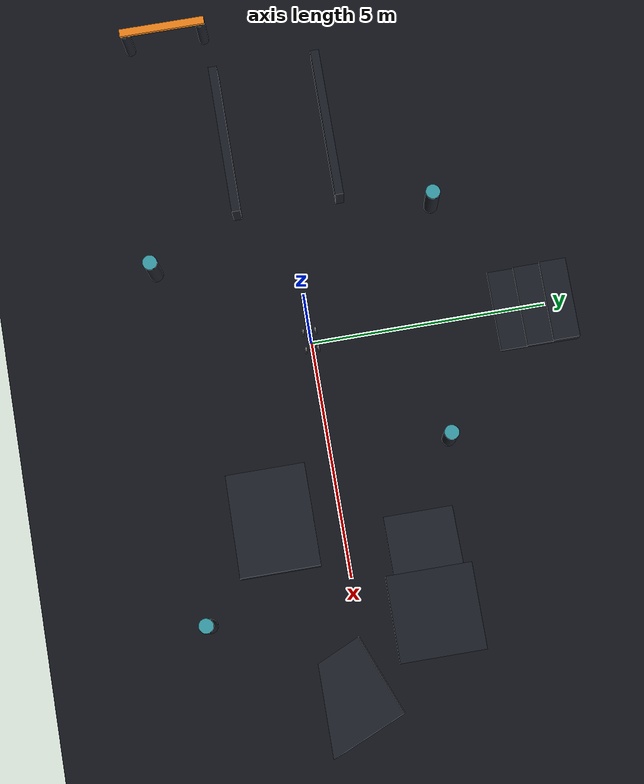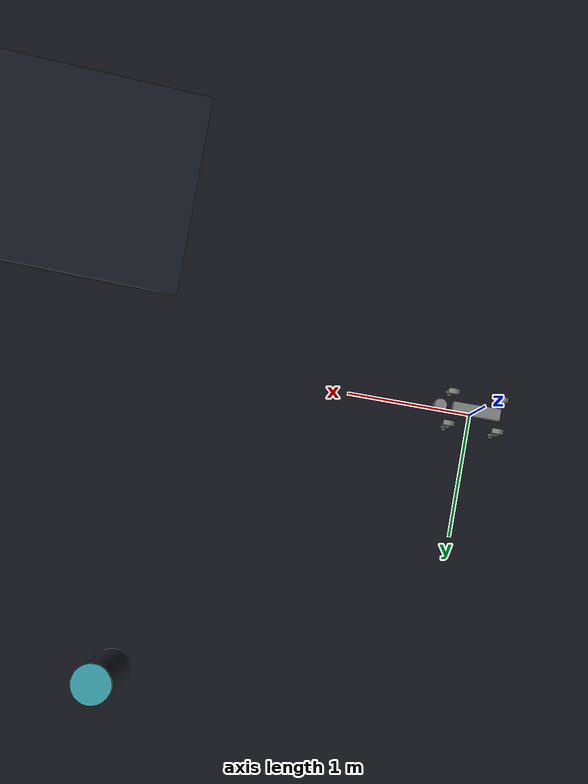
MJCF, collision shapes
<mujoco model="welt_testfeld">
  <include file="go2.xml"/>
  <worldbody>
    <geom name="w_floor" type="plane" size="0 0 0.05" rgba="0.07 0.08 0.11 1" condim="3" friction="1.0 0.005 0.0001"/>
    <body name="w_ramp_a" pos="3.400 -1.400 0.116" euler="0 -0.21 0">
      <geom name="w_ramp_a_g" type="box" size="1.300 0.840 0.063" rgba="0.10 0.115 0.145 1" condim="3" friction="0.9"/>
    </body>
    <body name="w_plat" pos="6.000 1.600 0.147">
      <geom name="w_plat_g" type="box" size="0.900 0.900 0.147" rgba="0.10 0.115 0.145 1" condim="3"/>
    </body>
    <body name="w_plat_ramp" pos="4.550 1.600 0.074" euler="0 -0.19 0">
      <geom name="w_plat_ramp_g" type="box" size="0.950 0.730 0.037" rgba="0.10 0.115 0.145 1" condim="3" friction="0.9"/>
    </body>
    <body name="w_step0" pos="0.000 4.200 0.053">
      <geom name="w_step0_g" type="box" size="0.850 0.280 0.053" rgba="0.10 0.115 0.145 1" condim="3"/>
    </body>
    <body name="w_step1" pos="0.000 4.750 0.105">
      <geom name="w_step1_g" type="box" size="0.850 0.280 0.105" rgba="0.10 0.115 0.145 1" condim="3"/>
    </body>
    <body name="w_step2" pos="0.000 5.300 0.158">
      <geom name="w_step2_g" type="box" size="0.850 0.280 0.158" rgba="0.10 0.115 0.145 1" condim="3"/>
    </body>
    <body name="w_wall_l" pos="-4.500 -1.100 0.367">
      <geom name="w_wall_l_g" type="box" size="1.600 0.090 0.367" rgba="0.10 0.115 0.145 1" condim="3"/>
    </body>
    <body name="w_wall_r" pos="-4.500 1.100 0.367">
      <geom name="w_wall_r_g" type="box" size="1.600 0.090 0.367" rgba="0.10 0.115 0.145 1" condim="3"/>
    </body>
    <body name="w_gate_l" pos="-7.000 -2.800 0.525">
      <geom name="w_gate_l_g" type="cylinder" size="0.105 0.525" rgba="0.10 0.115 0.145 1" condim="3"/>
    </body>
    <body name="w_gate_r" pos="-7.000 -1.200 0.525">
      <geom name="w_gate_r_g" type="cylinder" size="0.105 0.525" rgba="0.10 0.115 0.145 1" condim="3"/>
    </body>
    <body name="w_gate_top" pos="-7.000 -2.000 1.113">
      <geom name="w_gate_top_g" type="box" size="0.080 0.900 0.042" rgba="0.95 0.52 0.10 1" condim="3"/>
    </body>
    <body name="w_pil0" pos="2.500 2.500 0.578">
      <geom name="w_pil0_g" type="cylinder" size="0.147 0.578" rgba="0.10 0.115 0.145 1" condim="3"/>
    </body>
    <body name="w_pil0t" pos="2.500 2.500 1.194">
      <geom name="w_pil0t_g" type="cylinder" size="0.152 0.016" rgba="0.22 0.62 0.66 1" condim="3"/>
    </body>
    <body name="w_pil1" pos="-2.500 3.000 0.578">
      <geom name="w_pil1_g" type="cylinder" size="0.147 0.578" rgba="0.10 0.115 0.145 1" condim="3"/>
    </body>
    <body name="w_pil1t" pos="-2.500 3.000 1.194">
      <geom name="w_pil1t_g" type="cylinder" size="0.152 0.016" rgba="0.22 0.62 0.66 1" condim="3"/>
    </body>
    <body name="w_pil2" pos="-2.000 -3.000 0.578">
      <geom name="w_pil2_g" type="cylinder" size="0.147 0.578" rgba="0.10 0.115 0.145 1" condim="3"/>
    </body>
    <body name="w_pil2t" pos="-2.000 -3.000 1.194">
      <geom name="w_pil2t_g" type="cylinder" size="0.152 0.016" rgba="0.22 0.62 0.66 1" condim="3"/>
    </body>
    <body name="w_pil3" pos="5.500 -3.000 0.578">
      <geom name="w_pil3_g" type="cylinder" size="0.147 0.578" rgba="0.10 0.115 0.145 1" condim="3"/>
    </body>
    <body name="w_pil3t" pos="5.500 -3.000 1.194">
      <geom name="w_pil3t_g" type="cylinder" size="0.152 0.016" rgba="0.22 0.62 0.66 1" condim="3"/>
    </body>
    <body name="w_edge" pos="7.400 -0.500 0.095" euler="0.35 0 0.4">
      <geom name="w_edge_g" type="box" size="0.900 0.900 0.053" rgba="0.10 0.115 0.145 1" condim="3" friction="0.9"/>
    </body>
  </worldbody>
</mujoco>

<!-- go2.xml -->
<mujoco model="go2">
  <compiler angle="radian" meshdir="assets" autolimits="true"/>

  <option cone="elliptic" impratio="100"/>

  <default>
    <default class="go2">
      <geom friction="0.6" margin="0.001" condim="1"/>
      <joint axis="0 1 0" damping="2" armature="0.01" frictionloss="0.2"/>
      <position kp="80" forcerange="-23.7 23.7"/>
      <default class="abduction">
        <joint axis="1 0 0" range="-1.0472 1.0472"/>
        <position ctrlrange="-1.0472 1.0472"/>
      </default>
      <default class="hip">
        <default class="front_hip">
          <joint range="-1.5708 3.4907"/>
          <position ctrlrange="-1.5708 3.4907"/>
        </default>
        <default class="back_hip">
          <joint range="-0.5236 4.5379"/>
          <position ctrlrange="-0.5236 4.5379"/>
        </default>
      </default>
      <default class="knee">
        <joint range="-2.7227 -0.83776"/>
        <position ctrlrange="-2.7227 -0.83776" kp="100" forcerange="-45.43 45.43"/>
      </default>
      <default class="visual">
        <geom type="mesh" contype="0" conaffinity="0" group="2"/>
      </default>
      <default class="collision">
        <geom group="3"/>
        <default class="foot">
          <geom size="0.022" pos="-0.002 0 -0.213" priority="1" solimp="0.015 1 0.022" condim="6"
            friction="0.8 0.02 0.01"/>
        </default>
      </default>
    </default>
  </default>

  <asset>
    <material name="metal" rgba=".9 .95 .95 1"/>
    <material name="black" rgba="0 0 0 1"/>
    <material name="white" rgba="1 1 1 1"/>
    <material name="gray" rgba="0.671705 0.692426 0.774270 1"/>

    <mesh file="base_0.obj"/>
    <mesh file="base_1.obj"/>
    <mesh file="base_2.obj"/>
    <mesh file="base_3.obj"/>
    <mesh file="base_4.obj"/>
    <mesh file="hip_0.obj"/>
    <mesh file="hip_1.obj"/>
    <mesh file="thigh_0.obj"/>
    <mesh file="thigh_1.obj"/>
    <mesh file="thigh_mirror_0.obj"/>
    <mesh file="thigh_mirror_1.obj"/>
    <mesh file="calf_0.obj"/>
    <mesh file="calf_1.obj"/>
    <mesh file="calf_mirror_0.obj"/>
    <mesh file="calf_mirror_1.obj"/>
    <mesh file="foot.obj"/>
  </asset>

  <worldbody>
    <body name="base" pos="0 0 0.445" childclass="go2">
      <inertial pos="0.021112 0 -0.005366" quat="-0.000543471 0.713435 -0.00173769 0.700719" mass="6.921"
        diaginertia="0.107027 0.0980771 0.0244531"/>
      <freejoint/>
      <geom mesh="base_0" material="black" class="visual"/>
      <geom mesh="base_1" material="black" class="visual"/>
      <geom mesh="base_2" material="black" class="visual"/>
      <geom mesh="base_3" material="white" class="visual"/>
      <geom mesh="base_4" material="gray" class="visual"/>
      <geom size="0.1881 0.04675 0.057" type="box" class="collision"/>
      <geom size="0.05 0.045" pos="0.285 0 0.01" type="cylinder" class="collision"/>
      <geom size="0.047" pos="0.293 0 -0.06" class="collision"/>
      <site name="imu" pos="-0.02557 0 0.04232"/>
      <body name="FL_hip" pos="0.1934 0.0465 0">
        <inertial pos="-0.0054 0.00194 -0.000105" quat="0.497014 0.499245 0.505462 0.498237" mass="0.678"
          diaginertia="0.00088403 0.000596003 0.000479967"/>
        <joint name="FL_hip_joint" class="abduction"/>
        <geom mesh="hip_0" material="metal" class="visual"/>
        <geom mesh="hip_1" material="gray" class="visual"/>
        <geom size="0.046 0.02" pos="0 0.08 0" quat="1 1 0 0" type="cylinder" class="collision"/>
        <body name="FL_thigh" pos="0 0.0955 0">
          <inertial pos="-0.00374 -0.0223 -0.0327" quat="0.829533 0.0847635 -0.0200632 0.551623" mass="1.152"
            diaginertia="0.00594973 0.00584149 0.000878787"/>
          <joint name="FL_thigh_joint" class="front_hip"/>
          <geom mesh="thigh_0" material="metal" class="visual"/>
          <geom mesh="thigh_1" material="gray" class="visual"/>
          <geom size="0.1065 0.01225 0.017" pos="0 0 -0.1065" quat="0.707107 0 0.707107 0" type="box"
            class="collision"/>
          <body name="FL_calf" pos="0 0 -0.213">
            <inertial pos="0.00629595 -0.000622121 -0.141417" quat="0.710672 0.00154099 -0.00450087 0.703508"
              mass="0.241352" diaginertia="0.0014901 0.00146356 5.31397e-05"/>
            <joint name="FL_calf_joint" class="knee"/>
            <geom mesh="calf_0" material="gray" class="visual"/>
            <geom mesh="calf_1" material="black" class="visual"/>
            <geom size="0.012 0.06" pos="0.008 0 -0.06" quat="0.994493 0 -0.104807 0" type="cylinder"
              class="collision"/>
            <geom size="0.011 0.0325" pos="0.02 0 -0.148" quat="0.999688 0 0.0249974 0" type="cylinder"
              class="collision"/>
            <geom pos="0 0 -0.213" mesh="foot" class="visual" material="black"/>
            <geom name="FL" class="foot"/>
          </body>
        </body>
      </body>
      <body name="FR_hip" pos="0.1934 -0.0465 0">
        <inertial pos="-0.0054 -0.00194 -0.000105" quat="0.498237 0.505462 0.499245 0.497014" mass="0.678"
          diaginertia="0.00088403 0.000596003 0.000479967"/>
        <joint name="FR_hip_joint" class="abduction"/>
        <geom mesh="hip_0" material="metal" class="visual" quat="4.63268e-05 1 0 0"/>
        <geom mesh="hip_1" material="gray" class="visual" quat="4.63268e-05 1 0 0"/>
        <geom size="0.046 0.02" pos="0 -0.08 0" quat="0.707107 0.707107 0 0" type="cylinder" class="collision"/>
        <body name="FR_thigh" pos="0 -0.0955 0">
          <inertial pos="-0.00374 0.0223 -0.0327" quat="0.551623 -0.0200632 0.0847635 0.829533" mass="1.152"
            diaginertia="0.00594973 0.00584149 0.000878787"/>
          <joint name="FR_thigh_joint" class="front_hip"/>
          <geom mesh="thigh_mirror_0" material="metal" class="visual"/>
          <geom mesh="thigh_mirror_1" material="gray" class="visual"/>
          <geom size="0.1065 0.01225 0.017" pos="0 0 -0.1065" quat="0.707107 0 0.707107 0" type="box"
            class="collision"/>
          <body name="FR_calf" pos="0 0 -0.213">
            <inertial pos="0.00629595 0.000622121 -0.141417" quat="0.703508 -0.00450087 0.00154099 0.710672"
              mass="0.241352" diaginertia="0.0014901 0.00146356 5.31397e-05"/>
            <joint name="FR_calf_joint" class="knee"/>
            <geom mesh="calf_mirror_0" material="gray" class="visual"/>
            <geom mesh="calf_mirror_1" material="black" class="visual"/>
            <geom size="0.013 0.06" pos="0.01 0 -0.06" quat="0.995004 0 -0.0998334 0" type="cylinder"
              class="collision"/>
            <geom size="0.011 0.0325" pos="0.02 0 -0.148" quat="0.999688 0 0.0249974 0" type="cylinder"
              class="collision"/>
            <geom pos="0 0 -0.213" mesh="foot" class="visual" material="black"/>
            <geom name="FR" class="foot"/>
          </body>
        </body>
      </body>
      <body name="RL_hip" pos="-0.1934 0.0465 0">
        <inertial pos="0.0054 0.00194 -0.000105" quat="0.505462 0.498237 0.497014 0.499245" mass="0.678"
          diaginertia="0.00088403 0.000596003 0.000479967"/>
        <joint name="RL_hip_joint" class="abduction"/>
        <geom mesh="hip_0" material="metal" class="visual" quat="4.63268e-05 0 1 0"/>
        <geom mesh="hip_1" material="gray" class="visual" quat="4.63268e-05 0 1 0"/>
        <geom size="0.046 0.02" pos="0 0.08 0" quat="0.707107 0.707107 0 0" type="cylinder" class="collision"/>
        <body name="RL_thigh" pos="0 0.0955 0">
          <inertial pos="-0.00374 -0.0223 -0.0327" quat="0.829533 0.0847635 -0.0200632 0.551623" mass="1.152"
            diaginertia="0.00594973 0.00584149 0.000878787"/>
          <joint name="RL_thigh_joint" class="back_hip"/>
          <geom mesh="thigh_0" material="metal" class="visual"/>
          <geom mesh="thigh_1" material="gray" class="visual"/>
          <geom size="0.1065 0.01225 0.017" pos="0 0 -0.1065" quat="0.707107 0 0.707107 0" type="box"
            class="collision"/>
          <body name="RL_calf" pos="0 0 -0.213">
            <inertial pos="0.00629595 -0.000622121 -0.141417" quat="0.710672 0.00154099 -0.00450087 0.703508"
              mass="0.241352" diaginertia="0.0014901 0.00146356 5.31397e-05"/>
            <joint name="RL_calf_joint" class="knee"/>
            <geom mesh="calf_0" material="gray" class="visual"/>
            <geom mesh="calf_1" material="black" class="visual"/>
            <geom size="0.013 0.06" pos="0.01 0 -0.06" quat="0.995004 0 -0.0998334 0" type="cylinder"
              class="collision"/>
            <geom size="0.011 0.0325" pos="0.02 0 -0.148" quat="0.999688 0 0.0249974 0" type="cylinder"
              class="collision"/>
            <geom pos="0 0 -0.213" mesh="foot" class="visual" material="black"/>
            <geom name="RL" class="foot"/>
          </body>
        </body>
      </body>
      <body name="RR_hip" pos="-0.1934 -0.0465 0">
        <inertial pos="0.0054 -0.00194 -0.000105" quat="0.499245 0.497014 0.498237 0.505462" mass="0.678"
          diaginertia="0.00088403 0.000596003 0.000479967"/>
        <joint name="RR_hip_joint" class="abduction"/>
        <geom mesh="hip_0" material="metal" class="visual" quat="2.14617e-09 4.63268e-05 4.63268e-05 -1"/>
        <geom mesh="hip_1" material="gray" class="visual" quat="2.14617e-09 4.63268e-05 4.63268e-05 -1"/>
        <geom size="0.046 0.02" pos="0 -0.08 0" quat="0.707107 0.707107 0 0" type="cylinder" class="collision"/>
        <body name="RR_thigh" pos="0 -0.0955 0">
          <inertial pos="-0.00374 0.0223 -0.0327" quat="0.551623 -0.0200632 0.0847635 0.829533" mass="1.152"
            diaginertia="0.00594973 0.00584149 0.000878787"/>
          <joint name="RR_thigh_joint" class="back_hip"/>
          <geom mesh="thigh_mirror_0" material="metal" class="visual"/>
          <geom mesh="thigh_mirror_1" material="gray" class="visual"/>
          <geom size="0.1065 0.01225 0.017" pos="0 0 -0.1065" quat="0.707107 0 0.707107 0" type="box"
            class="collision"/>
          <body name="RR_calf" pos="0 0 -0.213">
            <inertial pos="0.00629595 0.000622121 -0.141417" quat="0.703508 -0.00450087 0.00154099 0.710672"
              mass="0.241352" diaginertia="0.0014901 0.00146356 5.31397e-05"/>
            <joint name="RR_calf_joint" class="knee"/>
            <geom mesh="calf_mirror_0" material="gray" class="visual"/>
            <geom mesh="calf_mirror_1" material="black" class="visual"/>
            <geom size="0.013 0.06" pos="0.01 0 -0.06" quat="0.995004 0 -0.0998334 0" type="cylinder"
              class="collision"/>
            <geom size="0.011 0.0325" pos="0.02 0 -0.148" quat="0.999688 0 0.0249974 0" type="cylinder"
              class="collision"/>
            <geom pos="0 0 -0.213" mesh="foot" class="visual" material="black"/>
            <geom name="RR" class="foot"/>
          </body>
        </body>
      </body>
    </body>
  </worldbody>

  <actuator>
    <position class="abduction" name="FL_hip" joint="FL_hip_joint"/>
    <position class="hip" name="FL_thigh" joint="FL_thigh_joint"/>
    <position class="knee" name="FL_calf" joint="FL_calf_joint"/>
    <position class="abduction" name="FR_hip" joint="FR_hip_joint"/>
    <position class="hip" name="FR_thigh" joint="FR_thigh_joint"/>
    <position class="knee" name="FR_calf" joint="FR_calf_joint"/>
    <position class="abduction" name="RL_hip" joint="RL_hip_joint"/>
    <position class="hip" name="RL_thigh" joint="RL_thigh_joint"/>
    <position class="knee" name="RL_calf" joint="RL_calf_joint"/>
    <position class="abduction" name="RR_hip" joint="RR_hip_joint"/>
    <position class="hip" name="RR_thigh" joint="RR_thigh_joint"/>
    <position class="knee" name="RR_calf" joint="RR_calf_joint"/>
  </actuator>

  <keyframe>
    <key name="home" qpos="0 0 0.27 1 0 0 0 0 0.9 -1.8 0 0.9 -1.8 0 0.9 -1.8 0 0.9 -1.8"
      ctrl="0 0.9 -1.8 0 0.9 -1.8 0 0.9 -1.8 0 0.9 -1.8"/>
  </keyframe>
  <sensor>
    <gyro name="gyro" site="imu"/>
    <accelerometer name="accel" site="imu"/>
  </sensor>
</mujoco>
